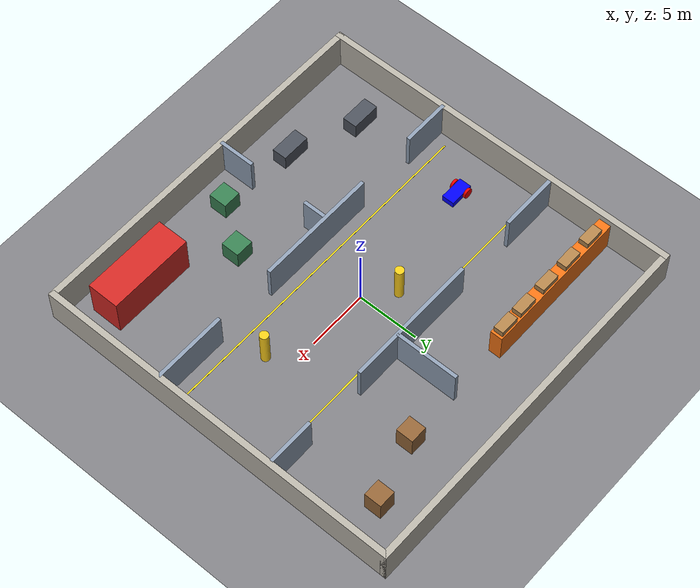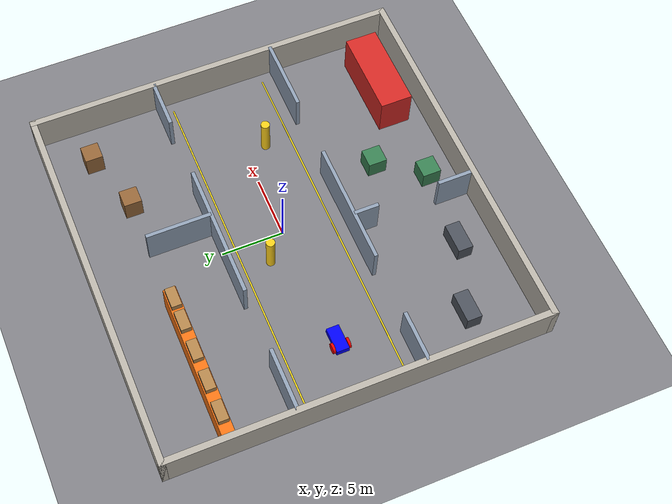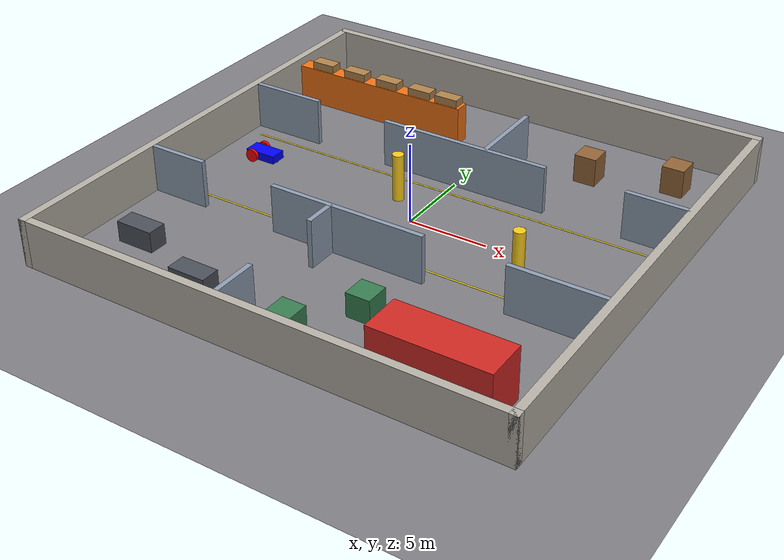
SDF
<sdf version="1.8">
 <world name="sim_world">
  <model name="environment">
   <static>true</static>
   <link name="ground">
    <collision name="collision"><geometry><plane><normal>0 0 1</normal></plane></geometry></collision>
    <visual name="visual">
     <geometry><plane><normal>0 0 1</normal><size>100 100</size></plane></geometry>
     <material>
      <ambient>0.5 0.5 0.52 1</ambient>
      <diffuse>0.5 0.5 0.52 1</diffuse>
      <specular>0.1 0.1 0.1 1</specular>
     </material>
    </visual>
   </link>
  </model>
  <model name="wall_north">
   <static>true</static>
   <pose>0 15 1.5 0 0 0</pose>
   <link name="link">
    <visual name="visual">
     <geometry><box><size>30.5 0.5 3</size></box></geometry>
     <material>
      <ambient>0.72 0.7 0.66 1</ambient>
      <diffuse>0.72 0.7 0.66 1</diffuse>
      <specular>0.1 0.1 0.1 1</specular>
     </material>
    </visual>
    <collision name="collision"><geometry><box><size>30.5 0.5 3</size></box></geometry></collision>
   </link>
  </model>
  <model name="wall_south">
   <static>true</static>
   <pose>0 -15 1.5 0 0 0</pose>
   <link name="link">
    <visual name="visual">
     <geometry><box><size>30.5 0.5 3</size></box></geometry>
     <material>
      <ambient>0.72 0.7 0.66 1</ambient>
      <diffuse>0.72 0.7 0.66 1</diffuse>
      <specular>0.1 0.1 0.1 1</specular>
     </material>
    </visual>
    <collision name="collision"><geometry><box><size>30.5 0.5 3</size></box></geometry></collision>
   </link>
  </model>
  <model name="wall_east">
   <static>true</static>
   <pose>15 0 1.5 0 0 0</pose>
   <link name="link">
    <visual name="visual">
     <geometry><box><size>0.5 30.5 3</size></box></geometry>
     <material>
      <ambient>0.72 0.7 0.66 1</ambient>
      <diffuse>0.72 0.7 0.66 1</diffuse>
      <specular>0.1 0.1 0.1 1</specular>
     </material>
    </visual>
    <collision name="collision"><geometry><box><size>0.5 30.5 3</size></box></geometry></collision>
   </link>
  </model>
  <model name="wall_west">
   <static>true</static>
   <pose>-15 0 1.5 0 0 0</pose>
   <link name="link">
    <visual name="visual">
     <geometry><box><size>0.5 30.5 3</size></box></geometry>
     <material>
      <ambient>0.72 0.7 0.66 1</ambient>
      <diffuse>0.72 0.7 0.66 1</diffuse>
      <specular>0.1 0.1 0.1 1</specular>
     </material>
    </visual>
    <collision name="collision"><geometry><box><size>0.5 30.5 3</size></box></geometry></collision>
   </link>
  </model>
  <model name="wall_hall_n1">
   <static>true</static>
   <pose>-12.5 5 1.5 0 0 0</pose>
   <link name="link">
    <visual name="visual">
     <geometry><box><size>5 0.3 3</size></box></geometry>
     <material>
      <ambient>0.56 0.62 0.7 1</ambient>
      <diffuse>0.56 0.62 0.7 1</diffuse>
      <specular>0.1 0.1 0.1 1</specular>
     </material>
    </visual>
    <collision name="collision"><geometry><box><size>5 0.3 3</size></box></geometry></collision>
   </link>
  </model>
  <model name="wall_hall_n2">
   <static>true</static>
   <pose>0.5 5 1.5 0 0 0</pose>
   <link name="link">
    <visual name="visual">
     <geometry><box><size>11 0.3 3</size></box></geometry>
     <material>
      <ambient>0.56 0.62 0.7 1</ambient>
      <diffuse>0.56 0.62 0.7 1</diffuse>
      <specular>0.1 0.1 0.1 1</specular>
     </material>
    </visual>
    <collision name="collision"><geometry><box><size>11 0.3 3</size></box></geometry></collision>
   </link>
  </model>
  <model name="wall_hall_n3">
   <static>true</static>
   <pose>13 5 1.5 0 0 0</pose>
   <link name="link">
    <visual name="visual">
     <geometry><box><size>4 0.3 3</size></box></geometry>
     <material>
      <ambient>0.56 0.62 0.7 1</ambient>
      <diffuse>0.56 0.62 0.7 1</diffuse>
      <specular>0.1 0.1 0.1 1</specular>
     </material>
    </visual>
    <collision name="collision"><geometry><box><size>4 0.3 3</size></box></geometry></collision>
   </link>
  </model>
  <model name="wall_hall_s1">
   <static>true</static>
   <pose>-13 -5 1.5 0 0 0</pose>
   <link name="link">
    <visual name="visual">
     <geometry><box><size>4 0.3 3</size></box></geometry>
     <material>
      <ambient>0.56 0.62 0.7 1</ambient>
      <diffuse>0.56 0.62 0.7 1</diffuse>
      <specular>0.1 0.1 0.1 1</specular>
     </material>
    </visual>
    <collision name="collision"><geometry><box><size>4 0.3 3</size></box></geometry></collision>
   </link>
  </model>
  <model name="wall_hall_s2">
   <static>true</static>
   <pose>-1 -5 1.5 0 0 0</pose>
   <link name="link">
    <visual name="visual">
     <geometry><box><size>10 0.3 3</size></box></geometry>
     <material>
      <ambient>0.56 0.62 0.7 1</ambient>
      <diffuse>0.56 0.62 0.7 1</diffuse>
      <specular>0.1 0.1 0.1 1</specular>
     </material>
    </visual>
    <collision name="collision"><geometry><box><size>10 0.3 3</size></box></geometry></collision>
   </link>
  </model>
  <model name="wall_hall_s3">
   <static>true</static>
   <pose>12 -5 1.5 0 0 0</pose>
   <link name="link">
    <visual name="visual">
     <geometry><box><size>6 0.3 3</size></box></geometry>
     <material>
      <ambient>0.56 0.62 0.7 1</ambient>
      <diffuse>0.56 0.62 0.7 1</diffuse>
      <specular>0.1 0.1 0.1 1</specular>
     </material>
    </visual>
    <collision name="collision"><geometry><box><size>6 0.3 3</size></box></geometry></collision>
   </link>
  </model>
  <model name="wall_storage">
   <static>true</static>
   <pose>2 7.6 1.5 0 0 0</pose>
   <link name="link">
    <visual name="visual">
     <geometry><box><size>0.3 5.2 3</size></box></geometry>
     <material>
      <ambient>0.56 0.62 0.7 1</ambient>
      <diffuse>0.56 0.62 0.7 1</diffuse>
      <specular>0.1 0.1 0.1 1</specular>
     </material>
    </visual>
    <collision name="collision"><geometry><box><size>0.3 5.2 3</size></box></geometry></collision>
   </link>
  </model>
  <model name="wall_office_1">
   <static>true</static>
   <pose>-2 -13.5 1.5 0 0 0</pose>
   <link name="link">
    <visual name="visual">
     <geometry><box><size>0.3 3 3</size></box></geometry>
     <material>
      <ambient>0.56 0.62 0.7 1</ambient>
      <diffuse>0.56 0.62 0.7 1</diffuse>
      <specular>0.1 0.1 0.1 1</specular>
     </material>
    </visual>
    <collision name="collision"><geometry><box><size>0.3 3 3</size></box></geometry></collision>
   </link>
  </model>
  <model name="wall_office_2">
   <static>true</static>
   <pose>-2 -6 1.5 0 0 0</pose>
   <link name="link">
    <visual name="visual">
     <geometry><box><size>0.3 2 3</size></box></geometry>
     <material>
      <ambient>0.56 0.62 0.7 1</ambient>
      <diffuse>0.56 0.62 0.7 1</diffuse>
      <specular>0.1 0.1 0.1 1</specular>
     </material>
    </visual>
    <collision name="collision"><geometry><box><size>0.3 2 3</size></box></geometry></collision>
   </link>
  </model>
  <model name="rack">
   <static>true</static>
   <pose>-8.75 10 1.25 0 0 0</pose>
   <link name="link">
    <visual name="visual">
     <geometry><box><size>12.5 1 2.5</size></box></geometry>
     <material>
      <ambient>0.95 0.45 0.08 1</ambient>
      <diffuse>0.95 0.45 0.08 1</diffuse>
      <specular>0.1 0.1 0.1 1</specular>
     </material>
    </visual>
    <collision name="collision"><geometry><box><size>12.5 1 2.5</size></box></geometry></collision>
   </link>
  </model>
  <model name="carton_0">
   <static>true</static>
   <pose>-13 10 2.75 0 0 0</pose>
   <link name="link">
    <visual name="visual">
     <geometry><box><size>1.6 0.8 0.5</size></box></geometry>
     <material>
      <ambient>0.7 0.52 0.3 1</ambient>
      <diffuse>0.7 0.52 0.3 1</diffuse>
      <specular>0.1 0.1 0.1 1</specular>
     </material>
    </visual>
   </link>
  </model>
  <model name="carton_1">
   <static>true</static>
   <pose>-10.5 10 2.75 0 0 0</pose>
   <link name="link">
    <visual name="visual">
     <geometry><box><size>1.6 0.8 0.5</size></box></geometry>
     <material>
      <ambient>0.7 0.52 0.3 1</ambient>
      <diffuse>0.7 0.52 0.3 1</diffuse>
      <specular>0.1 0.1 0.1 1</specular>
     </material>
    </visual>
   </link>
  </model>
  <model name="carton_2">
   <static>true</static>
   <pose>-8 10 2.75 0 0 0</pose>
   <link name="link">
    <visual name="visual">
     <geometry><box><size>1.6 0.8 0.5</size></box></geometry>
     <material>
      <ambient>0.7 0.52 0.3 1</ambient>
      <diffuse>0.7 0.52 0.3 1</diffuse>
      <specular>0.1 0.1 0.1 1</specular>
     </material>
    </visual>
   </link>
  </model>
  <model name="carton_3">
   <static>true</static>
   <pose>-5.5 10 2.75 0 0 0</pose>
   <link name="link">
    <visual name="visual">
     <geometry><box><size>1.6 0.8 0.5</size></box></geometry>
     <material>
      <ambient>0.7 0.52 0.3 1</ambient>
      <diffuse>0.7 0.52 0.3 1</diffuse>
      <specular>0.1 0.1 0.1 1</specular>
     </material>
    </visual>
   </link>
  </model>
  <model name="carton_4">
   <static>true</static>
   <pose>-3.5 10 2.75 0 0 0</pose>
   <link name="link">
    <visual name="visual">
     <geometry><box><size>1.6 0.8 0.5</size></box></geometry>
     <material>
      <ambient>0.7 0.52 0.3 1</ambient>
      <diffuse>0.7 0.52 0.3 1</diffuse>
      <specular>0.1 0.1 0.1 1</specular>
     </material>
    </visual>
   </link>
  </model>
  <model name="pallets_1">
   <static>true</static>
   <pose>6.5 10 0.9 0 0 0</pose>
   <link name="link">
    <visual name="visual">
     <geometry><box><size>1.4 1.4 1.8</size></box></geometry>
     <material>
      <ambient>0.58 0.4 0.22 1</ambient>
      <diffuse>0.58 0.4 0.22 1</diffuse>
      <specular>0.1 0.1 0.1 1</specular>
     </material>
    </visual>
    <collision name="collision"><geometry><box><size>1.4 1.4 1.8</size></box></geometry></collision>
   </link>
  </model>
  <model name="pallets_2">
   <static>true</static>
   <pose>11.5 11.5 0.9 0 0 0</pose>
   <link name="link">
    <visual name="visual">
     <geometry><box><size>1.4 1.4 1.8</size></box></geometry>
     <material>
      <ambient>0.58 0.4 0.22 1</ambient>
      <diffuse>0.58 0.4 0.22 1</diffuse>
      <specular>0.1 0.1 0.1 1</specular>
     </material>
    </visual>
    <collision name="collision"><geometry><box><size>1.4 1.4 1.8</size></box></geometry></collision>
   </link>
  </model>
  <model name="pillar_1">
   <static>true</static>
   <pose>-2 1.8 1.5 0 0 0</pose>
   <link name="link">
    <visual name="visual">
     <geometry><cylinder><radius>0.35</radius><length>3</length></cylinder></geometry>
     <material>
      <ambient>0.98 0.8 0.1 1</ambient>
      <diffuse>0.98 0.8 0.1 1</diffuse>
      <specular>0.1 0.1 0.1 1</specular>
     </material>
    </visual>
    <collision name="collision">
     <geometry><cylinder><radius>0.35</radius><length>3</length></cylinder></geometry>
    </collision>
   </link>
  </model>
  <model name="pillar_2">
   <static>true</static>
   <pose>8 -1.8 1.5 0 0 0</pose>
   <link name="link">
    <visual name="visual">
     <geometry><cylinder><radius>0.35</radius><length>3</length></cylinder></geometry>
     <material>
      <ambient>0.98 0.8 0.1 1</ambient>
      <diffuse>0.98 0.8 0.1 1</diffuse>
      <specular>0.1 0.1 0.1 1</specular>
     </material>
    </visual>
    <collision name="collision">
     <geometry><cylinder><radius>0.35</radius><length>3</length></cylinder></geometry>
    </collision>
   </link>
  </model>
  <model name="lane_north">
   <static>true</static>
   <pose>0 3.9 0.005 0 0 0</pose>
   <link name="link">
    <visual name="visual">
     <geometry><box><size>28 0.12 0.01</size></box></geometry>
     <material>
      <ambient>0.98 0.85 0.1 1</ambient>
      <diffuse>0.98 0.85 0.1 1</diffuse>
      <specular>0.1 0.1 0.1 1</specular>
     </material>
    </visual>
   </link>
  </model>
  <model name="lane_south">
   <static>true</static>
   <pose>0 -3.9 0.005 0 0 0</pose>
   <link name="link">
    <visual name="visual">
     <geometry><box><size>28 0.12 0.01</size></box></geometry>
     <material>
      <ambient>0.98 0.85 0.1 1</ambient>
      <diffuse>0.98 0.85 0.1 1</diffuse>
      <specular>0.1 0.1 0.1 1</specular>
     </material>
    </visual>
   </link>
  </model>
  <model name="desk_1">
   <static>true</static>
   <pose>-11.5 -10 0.65 0 0 0</pose>
   <link name="link">
    <visual name="visual">
     <geometry><box><size>2.4 1.2 1.3</size></box></geometry>
     <material>
      <ambient>0.3 0.32 0.36 1</ambient>
      <diffuse>0.3 0.32 0.36 1</diffuse>
      <specular>0.1 0.1 0.1 1</specular>
     </material>
    </visual>
    <collision name="collision"><geometry><box><size>2.4 1.2 1.3</size></box></geometry></collision>
   </link>
  </model>
  <model name="desk_2">
   <static>true</static>
   <pose>-6 -12 0.65 0 0 0</pose>
   <link name="link">
    <visual name="visual">
     <geometry><box><size>2.4 1.2 1.3</size></box></geometry>
     <material>
      <ambient>0.3 0.32 0.36 1</ambient>
      <diffuse>0.3 0.32 0.36 1</diffuse>
      <specular>0.1 0.1 0.1 1</specular>
     </material>
    </visual>
    <collision name="collision"><geometry><box><size>2.4 1.2 1.3</size></box></geometry></collision>
   </link>
  </model>
  <model name="truck">
   <static>true</static>
   <pose>9.5 -12.2 1.6 0 0 0</pose>
   <link name="link">
    <visual name="visual">
     <geometry><box><size>7 2.6 3.2</size></box></geometry>
     <material>
      <ambient>0.82 0.16 0.14 1</ambient>
      <diffuse>0.82 0.16 0.14 1</diffuse>
      <specular>0.1 0.1 0.1 1</specular>
     </material>
    </visual>
    <collision name="collision"><geometry><box><size>7 2.6 3.2</size></box></geometry></collision>
   </link>
  </model>
  <model name="crate_1">
   <static>true</static>
   <pose>3 -9 0.75 0 0 0</pose>
   <link name="link">
    <visual name="visual">
     <geometry><box><size>1.5 1.5 1.5</size></box></geometry>
     <material>
      <ambient>0.22 0.5 0.32 1</ambient>
      <diffuse>0.22 0.5 0.32 1</diffuse>
      <specular>0.1 0.1 0.1 1</specular>
     </material>
    </visual>
    <collision name="collision"><geometry><box><size>1.5 1.5 1.5</size></box></geometry></collision>
   </link>
  </model>
  <model name="crate_2">
   <static>true</static>
   <pose>0.5 -12.5 0.75 0 0 0</pose>
   <link name="link">
    <visual name="visual">
     <geometry><box><size>1.5 1.5 1.5</size></box></geometry>
     <material>
      <ambient>0.22 0.5 0.32 1</ambient>
      <diffuse>0.22 0.5 0.32 1</diffuse>
      <specular>0.1 0.1 0.1 1</specular>
     </material>
    </visual>
    <collision name="collision"><geometry><box><size>1.5 1.5 1.5</size></box></geometry></collision>
   </link>
  </model>
  <model name="robot" canonical_link="chassis">
   <pose relative_to="world">-11 0 1 0 0 0</pose>
   <frame name="lidar_frame" attached_to="chassis"><pose>0.8 0 0.5 0 0 0</pose></frame>
   <frame name="camera_frame" attached_to="chassis"><pose>0.8 0 0.5 0 0 0</pose></frame>
   <frame name="camera_optical_frame" attached_to="camera_frame"><pose>0 0 0 -1.57 0 -1.57</pose></frame>
   <link name="chassis">
    <pose relative_to="__model__">0.5 0 0.4 0 0 0</pose>
    <inertial>
     <mass>1.14395</mass>
     <inertia>
      <ixx>0.126164</ixx>
      <ixy>0</ixy>
      <ixz>0</ixz>
      <iyy>0.416519</iyy>
      <iyz>0</iyz>
      <izz>0.481014</izz>
     </inertia>
    </inertial>
    <visual name="visual">
     <geometry><box><size>2.0 1.0 0.5</size></box></geometry>
     <material>
      <ambient>0.0 0.0 1.0 1</ambient>
      <diffuse>0.0 0.0 1.0 1</diffuse>
      <specular>0.0 0.0 1.0 1</specular>
     </material>
    </visual>
    <collision name="collision"><geometry><box><size>2.0 1.0 0.5</size></box></geometry></collision>
    <sensor name="imu_sensor" type="imu">
     <always_on>1</always_on>
     <update_rate>1</update_rate>
     <visualize>true</visualize>
     <topic>imu</topic>
    </sensor>
    <sensor name="lidar" type="gpu_lidar">
     <pose relative_to="lidar_frame">0 0 0 0 0 0</pose>
     <topic>lidar</topic>
     <update_rate>10</update_rate>
     <ray>
      <scan>
       <horizontal>
        <samples>256</samples>
        <resolution>1</resolution>
        <min_angle>-3.14159</min_angle>
        <max_angle>3.14159</max_angle>
       </horizontal>
       <vertical>
        <samples>1</samples>
        <resolution>1</resolution>
        <min_angle>0</min_angle>
        <max_angle>0</max_angle>
       </vertical>
      </scan>
      <range><min>0.08</min><max>20.0</max><resolution>0.01</resolution></range>
     </ray>
     <alwaysOn>1</alwaysOn>
     <visualize>true</visualize>
    </sensor>
    <sensor name="camera" type="camera">
     <pose relative_to="camera_frame">0 0 0 0 0 0</pose>
     <camera>
      <horizontal_fov>1.047</horizontal_fov>
      <image><width>320</width><height>240</height></image>
      <clip><near>0.1</near><far>100</far></clip>
     </camera>
     <always_on>1</always_on>
     <update_rate>30</update_rate>
     <visualize>true</visualize>
     <topic>camera</topic>
    </sensor>
   </link>
   <link name="left_wheel">
    <pose relative_to="chassis">-0.5 0.6 0 -1.5707 0 0</pose>
    <inertial>
     <mass>2</mass>
     <inertia><ixx>0.145833</ixx><ixy>0</ixy><ixz>0</ixz><iyy>0.145833</iyy><iyz>0</iyz><izz>0.125</izz></inertia>
    </inertial>
    <visual name="visual">
     <geometry><cylinder><radius>0.4</radius><length>0.2</length></cylinder></geometry>
     <material>
      <ambient>1.0 0.0 0.0 1</ambient>
      <diffuse>1.0 0.0 0.0 1</diffuse>
      <specular>1.0 0.0 0.0 1</specular>
     </material>
    </visual>
    <collision name="collision">
     <geometry><cylinder><radius>0.4</radius><length>0.2</length></cylinder></geometry>
    </collision>
   </link>
   <link name="right_wheel">
    <pose relative_to="chassis">-0.5 -0.6 0 -1.5707 0 0</pose>
    <inertial>
     <mass>1</mass>
     <inertia><ixx>0.145833</ixx><ixy>0</ixy><ixz>0</ixz><iyy>0.145833</iyy><iyz>0</iyz><izz>0.125</izz></inertia>
    </inertial>
    <visual name="visual">
     <geometry><cylinder><radius>0.4</radius><length>0.2</length></cylinder></geometry>
     <material>
      <ambient>1.0 0.0 0.0 1</ambient>
      <diffuse>1.0 0.0 0.0 1</diffuse>
      <specular>1.0 0.0 0.0 1</specular>
     </material>
    </visual>
    <collision name="collision">
     <geometry><cylinder><radius>0.4</radius><length>0.2</length></cylinder></geometry>
    </collision>
   </link>
   <frame name="caster_frame" attached_to="chassis"><pose>0.8 0 -0.2 0 0 0</pose></frame>
   <link name="caster">
    <pose relative_to="caster_frame"/>
    <inertial>
     <mass>1</mass>
     <inertia><ixx>0.1</ixx><ixy>0</ixy><ixz>0</ixz><iyy>0.1</iyy><iyz>0</iyz><izz>0.1</izz></inertia>
    </inertial>
    <visual name="visual">
     <geometry><sphere><radius>0.2</radius></sphere></geometry>
     <material>
      <ambient>0.0 1 0.0 1</ambient>
      <diffuse>0.0 1 0.0 1</diffuse>
      <specular>0.0 1 0.0 1</specular>
     </material>
    </visual>
    <collision name="collision"><geometry><sphere><radius>0.2</radius></sphere></geometry></collision>
   </link>
   <joint name="left_wheel_joint" type="revolute">
    <pose relative_to="left_wheel"/>
    <parent>chassis</parent>
    <child>left_wheel</child>
    <axis>
     <xyz expressed_in="__model__">0 1 0</xyz>
     <limit><lower>-1.79769e+308</lower><upper>1.79769e+308</upper></limit>
    </axis>
   </joint>
   <joint name="right_wheel_joint" type="revolute">
    <pose relative_to="right_wheel"/>
    <parent>chassis</parent>
    <child>right_wheel</child>
    <axis>
     <xyz expressed_in="__model__">0 1 0</xyz>
     <limit><lower>-1.79769e+308</lower><upper>1.79769e+308</upper></limit>
    </axis>
   </joint>
   <joint name="caster_wheel" type="ball"><parent>chassis</parent><child>caster</child></joint>
   <plugin filename="ignition-gazebo-diff-drive-system" name="ignition::gazebo::systems::DiffDrive">
    <left_joint>left_wheel_joint</left_joint>
    <right_joint>right_wheel_joint</right_joint>
    <wheel_separation>1.2</wheel_separation>
    <wheel_radius>0.4</wheel_radius>
    <odom_publish_frequency>1</odom_publish_frequency>
    <topic>cmd_vel</topic>
   </plugin>
   <plugin filename="libignition-gazebo-pose-publisher-system.so" name="ignition::gazebo::systems::PosePublisher">
    <topicName>tf</topicName>
    <publish_link_pose>true</publish_link_pose>
    <publish_sensor_pose>true</publish_sensor_pose>
    <publish_collision_pose>false</publish_collision_pose>
    <publish_visual_pose>false</publish_visual_pose>
    <publish_nested_model_pose>true</publish_nested_model_pose>
    <use_pose_vector_msg>true</use_pose_vector_msg>
    <static_publisher>true</static_publisher>
    <static_update_frequency>1000</static_update_frequency>
   </plugin>
  </model>
 </world>
</sdf>
